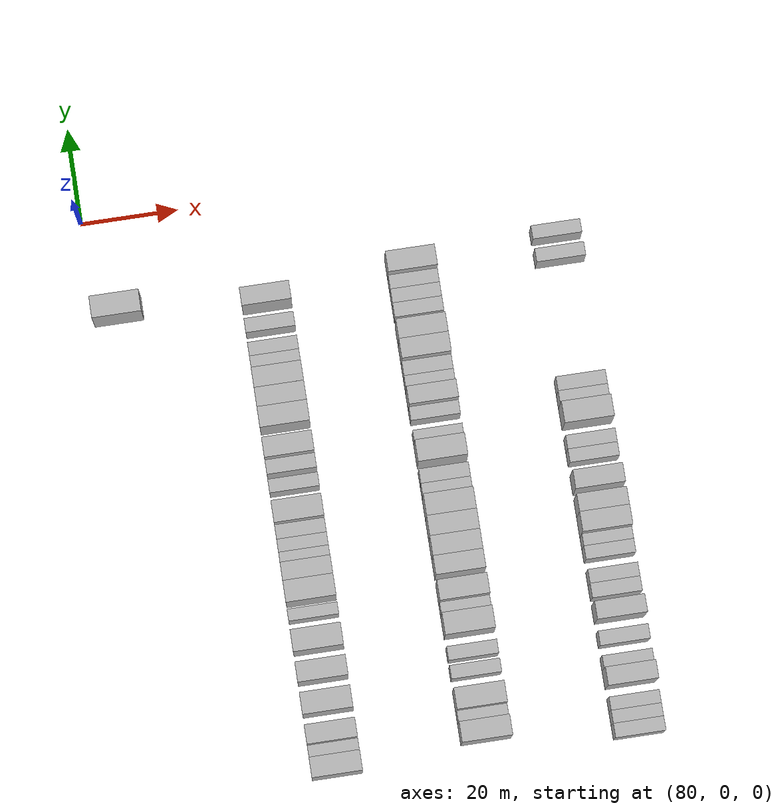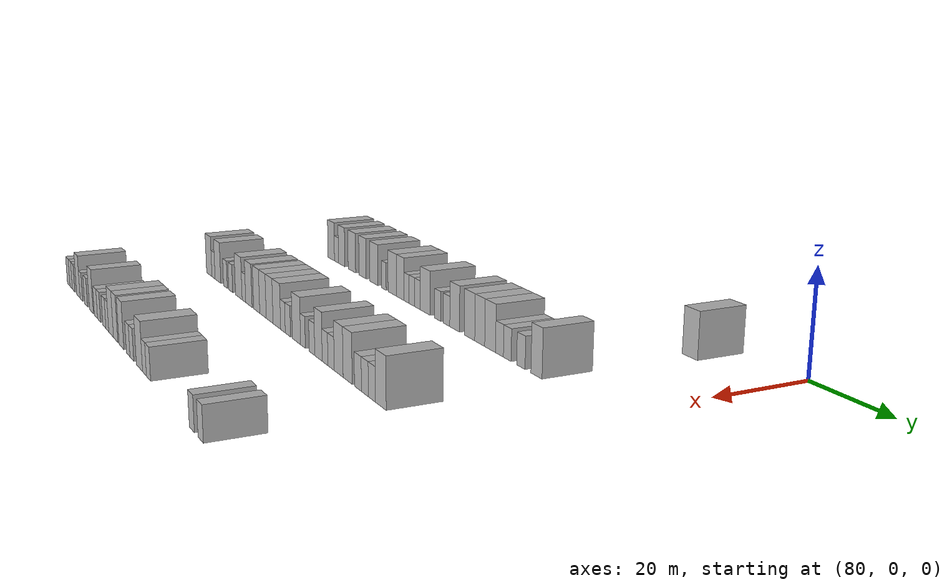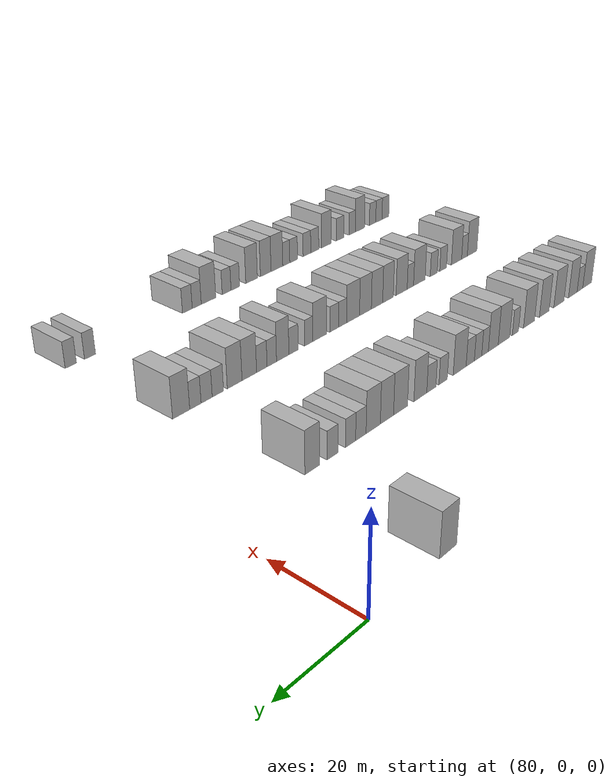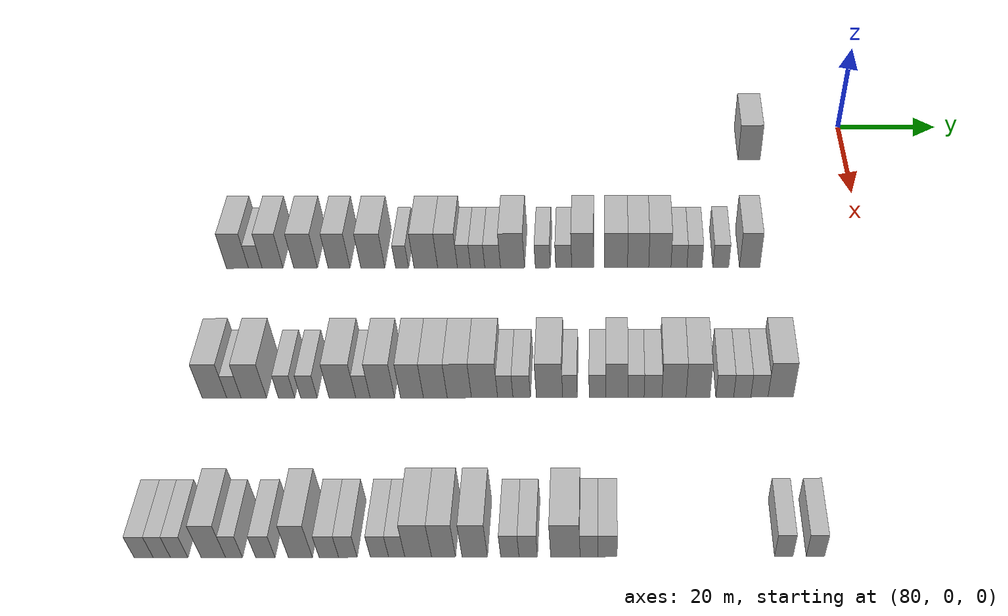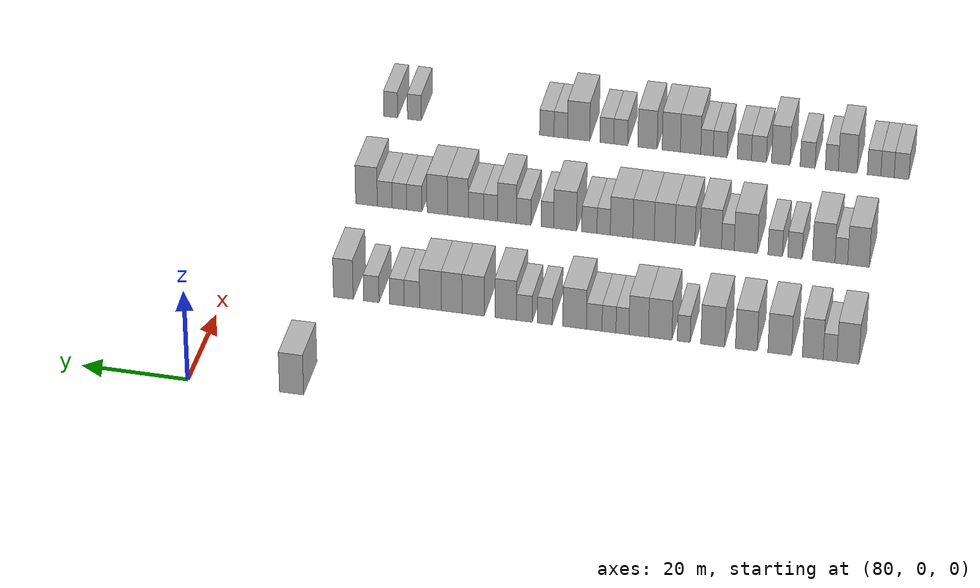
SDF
<sdf version="1.6">
 <world name="default">
  <model name="building_572">
   <static>1</static>
   <pose>85.0000 -19.4271 0 0.000000 0.000000 0.000000</pose>
   <link name="link">
    <pose>0 0 4.50 0 0 0</pose>
    <collision name="collision"><geometry><box><size>10.0000 4.4947 9.0000</size></box></geometry></collision>
    <visual name="visual">
     <cast_shadows>0</cast_shadows>
     <geometry><box><size>10.0000 4.4947 9.0000</size></box></geometry>
     <material>
      <script>
       <uri>model://HANNAS_wall/materials/scripts</uri>
       <uri>model://HANNAS_wall/materials/textures</uri>
       <name>vrc/HANNAS_wall</name>
      </script>
     </material>
    </visual>
   </link>
  </model>
  <model name="building_773">
   <static>1</static>
   <pose>115.0000 -116.7209 0 0.000000 0.000000 0.000000</pose>
   <link name="link">
    <pose>0 0 4.50 0 0 0</pose>
    <collision name="collision"><geometry><box><size>10.0000 4.0631 9.0000</size></box></geometry></collision>
    <visual name="visual">
     <cast_shadows>0</cast_shadows>
     <geometry><box><size>10.0000 4.0631 9.0000</size></box></geometry>
     <material>
      <script>
       <uri>model://HANNAS_wall/materials/scripts</uri>
       <uri>model://HANNAS_wall/materials/textures</uri>
       <name>vrc/HANNAS_wall</name>
      </script>
     </material>
    </visual>
   </link>
  </model>
  <model name="building_774">
   <static>1</static>
   <pose>115.0000 -113.4201 0 0.000000 0.000000 0.000000</pose>
   <link name="link">
    <pose>0 0 3.00 0 0 0</pose>
    <collision name="collision"><geometry><box><size>10.0000 2.5385 6.0000</size></box></geometry></collision>
    <visual name="visual">
     <cast_shadows>0</cast_shadows>
     <geometry><box><size>10.0000 2.5385 6.0000</size></box></geometry>
     <material>
      <script>
       <uri>model://HANNAS_wall/materials/scripts</uri>
       <uri>model://HANNAS_wall/materials/textures</uri>
       <name>vrc/HANNAS_wall</name>
      </script>
     </material>
    </visual>
   </link>
  </model>
  <model name="building_775">
   <static>1</static>
   <pose>115.0000 -110.2233 0 0.000000 0.000000 0.000000</pose>
   <link name="link">
    <pose>0 0 4.50 0 0 0</pose>
    <collision name="collision"><geometry><box><size>10.0000 3.8550 9.0000</size></box></geometry></collision>
    <visual name="visual">
     <cast_shadows>0</cast_shadows>
     <geometry><box><size>10.0000 3.8550 9.0000</size></box></geometry>
     <material>
      <script>
       <uri>model://HANNAS_wall/materials/scripts</uri>
       <uri>model://HANNAS_wall/materials/textures</uri>
       <name>vrc/HANNAS_wall</name>
      </script>
     </material>
    </visual>
   </link>
  </model>
  <model name="building_776">
   <static>1</static>
   <pose>115.0000 -104.1035 0 0.000000 0.000000 0.000000</pose>
   <link name="link">
    <pose>0 0 4.50 0 0 0</pose>
    <collision name="collision"><geometry><box><size>10.0000 4.3846 9.0000</size></box></geometry></collision>
    <visual name="visual">
     <cast_shadows>0</cast_shadows>
     <geometry><box><size>10.0000 4.3846 9.0000</size></box></geometry>
     <material>
      <script>
       <uri>model://HANNAS_wall/materials/scripts</uri>
       <uri>model://HANNAS_wall/materials/textures</uri>
       <name>vrc/HANNAS_wall</name>
      </script>
     </material>
    </visual>
   </link>
  </model>
  <model name="building_777">
   <static>1</static>
   <pose>115.0000 -97.8915 0 0.000000 0.000000 0.000000</pose>
   <link name="link">
    <pose>0 0 4.50 0 0 0</pose>
    <collision name="collision"><geometry><box><size>10.0000 4.0394 9.0000</size></box></geometry></collision>
    <visual name="visual">
     <cast_shadows>0</cast_shadows>
     <geometry><box><size>10.0000 4.0394 9.0000</size></box></geometry>
     <material>
      <script>
       <uri>model://HANNAS_wall/materials/scripts</uri>
       <uri>model://HANNAS_wall/materials/textures</uri>
       <name>vrc/HANNAS_wall</name>
      </script>
     </material>
    </visual>
   </link>
  </model>
  <model name="building_778">
   <static>1</static>
   <pose>115.0000 -91.6483 0 0.000000 0.000000 0.000000</pose>
   <link name="link">
    <pose>0 0 4.50 0 0 0</pose>
    <collision name="collision"><geometry><box><size>10.0000 4.4471 9.0000</size></box></geometry></collision>
    <visual name="visual">
     <cast_shadows>0</cast_shadows>
     <geometry><box><size>10.0000 4.4471 9.0000</size></box></geometry>
     <material>
      <script>
       <uri>model://HANNAS_wall/materials/scripts</uri>
       <uri>model://HANNAS_wall/materials/textures</uri>
       <name>vrc/HANNAS_wall</name>
      </script>
     </material>
    </visual>
   </link>
  </model>
  <model name="building_779">
   <static>1</static>
   <pose>115.0000 -86.2209 0 0.000000 0.000000 0.000000</pose>
   <link name="link">
    <pose>0 0 3.00 0 0 0</pose>
    <collision name="collision"><geometry><box><size>10.0000 2.4076 6.0000</size></box></geometry></collision>
    <visual name="visual">
     <cast_shadows>0</cast_shadows>
     <geometry><box><size>10.0000 2.4076 6.0000</size></box></geometry>
     <material>
      <script>
       <uri>model://HANNAS_wall/materials/scripts</uri>
       <uri>model://HANNAS_wall/materials/textures</uri>
       <name>vrc/HANNAS_wall</name>
      </script>
     </material>
    </visual>
   </link>
  </model>
  <model name="building_780">
   <static>1</static>
   <pose>115.0000 -81.8246 0 0.000000 0.000000 0.000000</pose>
   <link name="link">
    <pose>0 0 4.50 0 0 0</pose>
    <collision name="collision"><geometry><box><size>10.0000 4.3850 9.0000</size></box></geometry></collision>
    <visual name="visual">
     <cast_shadows>0</cast_shadows>
     <geometry><box><size>10.0000 4.3850 9.0000</size></box></geometry>
     <material>
      <script>
       <uri>model://HANNAS_wall/materials/scripts</uri>
       <uri>model://HANNAS_wall/materials/textures</uri>
       <name>vrc/HANNAS_wall</name>
      </script>
     </material>
    </visual>
   </link>
  </model>
  <model name="building_781">
   <static>1</static>
   <pose>115.0000 -77.7991 0 0.000000 0.000000 0.000000</pose>
   <link name="link">
    <pose>0 0 4.50 0 0 0</pose>
    <collision name="collision"><geometry><box><size>10.0000 3.6659 9.0000</size></box></geometry></collision>
    <visual name="visual">
     <cast_shadows>0</cast_shadows>
     <geometry><box><size>10.0000 3.6659 9.0000</size></box></geometry>
     <material>
      <script>
       <uri>model://HANNAS_wall/materials/scripts</uri>
       <uri>model://HANNAS_wall/materials/textures</uri>
       <name>vrc/HANNAS_wall</name>
      </script>
     </material>
    </visual>
   </link>
  </model>
  <model name="building_782">
   <static>1</static>
   <pose>115.0000 -74.7531 0 0.000000 0.000000 0.000000</pose>
   <link name="link">
    <pose>0 0 3.00 0 0 0</pose>
    <collision name="collision"><geometry><box><size>10.0000 2.4262 6.0000</size></box></geometry></collision>
    <visual name="visual">
     <cast_shadows>0</cast_shadows>
     <geometry><box><size>10.0000 2.4262 6.0000</size></box></geometry>
     <material>
      <script>
       <uri>model://HANNAS_wall/materials/scripts</uri>
       <uri>model://HANNAS_wall/materials/textures</uri>
       <name>vrc/HANNAS_wall</name>
      </script>
     </material>
    </visual>
   </link>
  </model>
  <model name="building_783">
   <static>1</static>
   <pose>115.0000 -72.2245 0 0.000000 0.000000 0.000000</pose>
   <link name="link">
    <pose>0 0 3.00 0 0 0</pose>
    <collision name="collision"><geometry><box><size>10.0000 2.6310 6.0000</size></box></geometry></collision>
    <visual name="visual">
     <cast_shadows>0</cast_shadows>
     <geometry><box><size>10.0000 2.6310 6.0000</size></box></geometry>
     <material>
      <script>
       <uri>model://HANNAS_wall/materials/scripts</uri>
       <uri>model://HANNAS_wall/materials/textures</uri>
       <name>vrc/HANNAS_wall</name>
      </script>
     </material>
    </visual>
   </link>
  </model>
  <model name="building_784">
   <static>1</static>
   <pose>115.0000 -69.4503 0 0.000000 0.000000 0.000000</pose>
   <link name="link">
    <pose>0 0 3.00 0 0 0</pose>
    <collision name="collision"><geometry><box><size>10.0000 2.9175 6.0000</size></box></geometry></collision>
    <visual name="visual">
     <cast_shadows>0</cast_shadows>
     <geometry><box><size>10.0000 2.9175 6.0000</size></box></geometry>
     <material>
      <script>
       <uri>model://HANNAS_wall/materials/scripts</uri>
       <uri>model://HANNAS_wall/materials/textures</uri>
       <name>vrc/HANNAS_wall</name>
      </script>
     </material>
    </visual>
   </link>
  </model>
  <model name="building_785">
   <static>1</static>
   <pose>115.0000 -65.7607 0 0.000000 0.000000 0.000000</pose>
   <link name="link">
    <pose>0 0 4.50 0 0 0</pose>
    <collision name="collision"><geometry><box><size>10.0000 4.4617 9.0000</size></box></geometry></collision>
    <visual name="visual">
     <cast_shadows>0</cast_shadows>
     <geometry><box><size>10.0000 4.4617 9.0000</size></box></geometry>
     <material>
      <script>
       <uri>model://HANNAS_wall/materials/scripts</uri>
       <uri>model://HANNAS_wall/materials/textures</uri>
       <name>vrc/HANNAS_wall</name>
      </script>
     </material>
    </visual>
   </link>
  </model>
  <model name="building_786">
   <static>1</static>
   <pose>115.0000 -60.1400 0 0.000000 0.000000 0.000000</pose>
   <link name="link">
    <pose>0 0 3.00 0 0 0</pose>
    <collision name="collision"><geometry><box><size>10.0000 2.7796 6.0000</size></box></geometry></collision>
    <visual name="visual">
     <cast_shadows>0</cast_shadows>
     <geometry><box><size>10.0000 2.7796 6.0000</size></box></geometry>
     <material>
      <script>
       <uri>model://HANNAS_wall/materials/scripts</uri>
       <uri>model://HANNAS_wall/materials/textures</uri>
       <name>vrc/HANNAS_wall</name>
      </script>
     </material>
    </visual>
   </link>
  </model>
  <model name="building_787">
   <static>1</static>
   <pose>115.0000 -56.2725 0 0.000000 0.000000 0.000000</pose>
   <link name="link">
    <pose>0 0 3.00 0 0 0</pose>
    <collision name="collision"><geometry><box><size>10.0000 2.9555 6.0000</size></box></geometry></collision>
    <visual name="visual">
     <cast_shadows>0</cast_shadows>
     <geometry><box><size>10.0000 2.9555 6.0000</size></box></geometry>
     <material>
      <script>
       <uri>model://HANNAS_wall/materials/scripts</uri>
       <uri>model://HANNAS_wall/materials/textures</uri>
       <name>vrc/HANNAS_wall</name>
      </script>
     </material>
    </visual>
   </link>
  </model>
  <model name="building_788">
   <static>1</static>
   <pose>115.0000 -52.7393 0 0.000000 0.000000 0.000000</pose>
   <link name="link">
    <pose>0 0 4.50 0 0 0</pose>
    <collision name="collision"><geometry><box><size>10.0000 4.1108 9.0000</size></box></geometry></collision>
    <visual name="visual">
     <cast_shadows>0</cast_shadows>
     <geometry><box><size>10.0000 4.1108 9.0000</size></box></geometry>
     <material>
      <script>
       <uri>model://HANNAS_wall/materials/scripts</uri>
       <uri>model://HANNAS_wall/materials/textures</uri>
       <name>vrc/HANNAS_wall</name>
      </script>
     </material>
    </visual>
   </link>
  </model>
  <model name="building_789">
   <static>1</static>
   <pose>115.0000 -46.5636 0 0.000000 0.000000 0.000000</pose>
   <link name="link">
    <pose>0 0 4.50 0 0 0</pose>
    <collision name="collision"><geometry><box><size>10.0000 4.2407 9.0000</size></box></geometry></collision>
    <visual name="visual">
     <cast_shadows>0</cast_shadows>
     <geometry><box><size>10.0000 4.2407 9.0000</size></box></geometry>
     <material>
      <script>
       <uri>model://HANNAS_wall/materials/scripts</uri>
       <uri>model://HANNAS_wall/materials/textures</uri>
       <name>vrc/HANNAS_wall</name>
      </script>
     </material>
    </visual>
   </link>
  </model>
  <model name="building_790">
   <static>1</static>
   <pose>115.0000 -42.4787 0 0.000000 0.000000 0.000000</pose>
   <link name="link">
    <pose>0 0 4.50 0 0 0</pose>
    <collision name="collision"><geometry><box><size>10.0000 3.9291 9.0000</size></box></geometry></collision>
    <visual name="visual">
     <cast_shadows>0</cast_shadows>
     <geometry><box><size>10.0000 3.9291 9.0000</size></box></geometry>
     <material>
      <script>
       <uri>model://HANNAS_wall/materials/scripts</uri>
       <uri>model://HANNAS_wall/materials/textures</uri>
       <name>vrc/HANNAS_wall</name>
      </script>
     </material>
    </visual>
   </link>
  </model>
  <model name="building_791">
   <static>1</static>
   <pose>115.0000 -38.4494 0 0.000000 0.000000 0.000000</pose>
   <link name="link">
    <pose>0 0 4.50 0 0 0</pose>
    <collision name="collision"><geometry><box><size>10.0000 4.1294 9.0000</size></box></geometry></collision>
    <visual name="visual">
     <cast_shadows>0</cast_shadows>
     <geometry><box><size>10.0000 4.1294 9.0000</size></box></geometry>
     <material>
      <script>
       <uri>model://HANNAS_wall/materials/scripts</uri>
       <uri>model://HANNAS_wall/materials/textures</uri>
       <name>vrc/HANNAS_wall</name>
      </script>
     </material>
    </visual>
   </link>
  </model>
  <model name="building_792">
   <static>1</static>
   <pose>115.0000 -34.9078 0 0.000000 0.000000 0.000000</pose>
   <link name="link">
    <pose>0 0 3.00 0 0 0</pose>
    <collision name="collision"><geometry><box><size>10.0000 2.9537 6.0000</size></box></geometry></collision>
    <visual name="visual">
     <cast_shadows>0</cast_shadows>
     <geometry><box><size>10.0000 2.9537 6.0000</size></box></geometry>
     <material>
      <script>
       <uri>model://HANNAS_wall/materials/scripts</uri>
       <uri>model://HANNAS_wall/materials/textures</uri>
       <name>vrc/HANNAS_wall</name>
      </script>
     </material>
    </visual>
   </link>
  </model>
  <model name="building_793">
   <static>1</static>
   <pose>115.0000 -32.0259 0 0.000000 0.000000 0.000000</pose>
   <link name="link">
    <pose>0 0 3.00 0 0 0</pose>
    <collision name="collision"><geometry><box><size>10.0000 2.8101 6.0000</size></box></geometry></collision>
    <visual name="visual">
     <cast_shadows>0</cast_shadows>
     <geometry><box><size>10.0000 2.8101 6.0000</size></box></geometry>
     <material>
      <script>
       <uri>model://HANNAS_wall/materials/scripts</uri>
       <uri>model://HANNAS_wall/materials/textures</uri>
       <name>vrc/HANNAS_wall</name>
      </script>
     </material>
    </visual>
   </link>
  </model>
  <model name="building_794">
   <static>1</static>
   <pose>115.0000 -27.1484 0 0.000000 0.000000 0.000000</pose>
   <link name="link">
    <pose>0 0 3.00 0 0 0</pose>
    <collision name="collision"><geometry><box><size>10.0000 2.9449 6.0000</size></box></geometry></collision>
    <visual name="visual">
     <cast_shadows>0</cast_shadows>
     <geometry><box><size>10.0000 2.9449 6.0000</size></box></geometry>
     <material>
      <script>
       <uri>model://HANNAS_wall/materials/scripts</uri>
       <uri>model://HANNAS_wall/materials/textures</uri>
       <name>vrc/HANNAS_wall</name>
      </script>
     </material>
    </visual>
   </link>
  </model>
  <model name="building_795">
   <static>1</static>
   <pose>115.0000 -21.7924 0 0.000000 0.000000 0.000000</pose>
   <link name="link">
    <pose>0 0 4.50 0 0 0</pose>
    <collision name="collision"><geometry><box><size>10.0000 3.7671 9.0000</size></box></geometry></collision>
    <visual name="visual">
     <cast_shadows>0</cast_shadows>
     <geometry><box><size>10.0000 3.7671 9.0000</size></box></geometry>
     <material>
      <script>
       <uri>model://HANNAS_wall/materials/scripts</uri>
       <uri>model://HANNAS_wall/materials/textures</uri>
       <name>vrc/HANNAS_wall</name>
      </script>
     </material>
    </visual>
   </link>
  </model>
  <model name="building_996">
   <static>1</static>
   <pose>145.0000 -114.2841 0 0.000000 0.000000 0.000000</pose>
   <link name="link">
    <pose>0 0 4.50 0 0 0</pose>
    <collision name="collision"><geometry><box><size>10.0000 4.1103 9.0000</size></box></geometry></collision>
    <visual name="visual">
     <cast_shadows>0</cast_shadows>
     <geometry><box><size>10.0000 4.1103 9.0000</size></box></geometry>
     <material>
      <script>
       <uri>model://HANNAS_wall/materials/scripts</uri>
       <uri>model://HANNAS_wall/materials/textures</uri>
       <name>vrc/HANNAS_wall</name>
      </script>
     </material>
    </visual>
   </link>
  </model>
  <model name="building_997">
   <static>1</static>
   <pose>145.0000 -111.0230 0 0.000000 0.000000 0.000000</pose>
   <link name="link">
    <pose>0 0 3.00 0 0 0</pose>
    <collision name="collision"><geometry><box><size>10.0000 2.4119 6.0000</size></box></geometry></collision>
    <visual name="visual">
     <cast_shadows>0</cast_shadows>
     <geometry><box><size>10.0000 2.4119 6.0000</size></box></geometry>
     <material>
      <script>
       <uri>model://HANNAS_wall/materials/scripts</uri>
       <uri>model://HANNAS_wall/materials/textures</uri>
       <name>vrc/HANNAS_wall</name>
      </script>
     </material>
    </visual>
   </link>
  </model>
  <model name="building_998">
   <static>1</static>
   <pose>145.0000 -107.6802 0 0.000000 0.000000 0.000000</pose>
   <link name="link">
    <pose>0 0 4.50 0 0 0</pose>
    <collision name="collision"><geometry><box><size>10.0000 4.2737 9.0000</size></box></geometry></collision>
    <visual name="visual">
     <cast_shadows>0</cast_shadows>
     <geometry><box><size>10.0000 4.2737 9.0000</size></box></geometry>
     <material>
      <script>
       <uri>model://HANNAS_wall/materials/scripts</uri>
       <uri>model://HANNAS_wall/materials/textures</uri>
       <name>vrc/HANNAS_wall</name>
      </script>
     </material>
    </visual>
   </link>
  </model>
  <model name="building_999">
   <static>1</static>
   <pose>145.0000 -102.1789 0 0.000000 0.000000 0.000000</pose>
   <link name="link">
    <pose>0 0 3.00 0 0 0</pose>
    <collision name="collision"><geometry><box><size>10.0000 2.7288 6.0000</size></box></geometry></collision>
    <visual name="visual">
     <cast_shadows>0</cast_shadows>
     <geometry><box><size>10.0000 2.7288 6.0000</size></box></geometry>
     <material>
      <script>
       <uri>model://HANNAS_wall/materials/scripts</uri>
       <uri>model://HANNAS_wall/materials/textures</uri>
       <name>vrc/HANNAS_wall</name>
      </script>
     </material>
    </visual>
   </link>
  </model>
  <model name="building_1000">
   <static>1</static>
   <pose>145.0000 -98.4271 0 0.000000 0.000000 0.000000</pose>
   <link name="link">
    <pose>0 0 3.00 0 0 0</pose>
    <collision name="collision"><geometry><box><size>10.0000 2.7747 6.0000</size></box></geometry></collision>
    <visual name="visual">
     <cast_shadows>0</cast_shadows>
     <geometry><box><size>10.0000 2.7747 6.0000</size></box></geometry>
     <material>
      <script>
       <uri>model://HANNAS_wall/materials/scripts</uri>
       <uri>model://HANNAS_wall/materials/textures</uri>
       <name>vrc/HANNAS_wall</name>
      </script>
     </material>
    </visual>
   </link>
  </model>
  <model name="building_1001">
   <static>1</static>
   <pose>145.0000 -92.8062 0 0.000000 0.000000 0.000000</pose>
   <link name="link">
    <pose>0 0 4.50 0 0 0</pose>
    <collision name="collision"><geometry><box><size>10.0000 4.4672 9.0000</size></box></geometry></collision>
    <visual name="visual">
     <cast_shadows>0</cast_shadows>
     <geometry><box><size>10.0000 4.4672 9.0000</size></box></geometry>
     <material>
      <script>
       <uri>model://HANNAS_wall/materials/scripts</uri>
       <uri>model://HANNAS_wall/materials/textures</uri>
       <name>vrc/HANNAS_wall</name>
      </script>
     </material>
    </visual>
   </link>
  </model>
  <model name="building_1002">
   <static>1</static>
   <pose>145.0000 -89.3611 0 0.000000 0.000000 0.000000</pose>
   <link name="link">
    <pose>0 0 3.00 0 0 0</pose>
    <collision name="collision"><geometry><box><size>10.0000 2.4230 6.0000</size></box></geometry></collision>
    <visual name="visual">
     <cast_shadows>0</cast_shadows>
     <geometry><box><size>10.0000 2.4230 6.0000</size></box></geometry>
     <material>
      <script>
       <uri>model://HANNAS_wall/materials/scripts</uri>
       <uri>model://HANNAS_wall/materials/textures</uri>
       <name>vrc/HANNAS_wall</name>
      </script>
     </material>
    </visual>
   </link>
  </model>
  <model name="building_1003">
   <static>1</static>
   <pose>145.0000 -86.0869 0 0.000000 0.000000 0.000000</pose>
   <link name="link">
    <pose>0 0 4.50 0 0 0</pose>
    <collision name="collision"><geometry><box><size>10.0000 4.1253 9.0000</size></box></geometry></collision>
    <visual name="visual">
     <cast_shadows>0</cast_shadows>
     <geometry><box><size>10.0000 4.1253 9.0000</size></box></geometry>
     <material>
      <script>
       <uri>model://HANNAS_wall/materials/scripts</uri>
       <uri>model://HANNAS_wall/materials/textures</uri>
       <name>vrc/HANNAS_wall</name>
      </script>
     </material>
    </visual>
   </link>
  </model>
  <model name="building_1004">
   <static>1</static>
   <pose>145.0000 -81.1056 0 0.000000 0.000000 0.000000</pose>
   <link name="link">
    <pose>0 0 4.50 0 0 0</pose>
    <collision name="collision"><geometry><box><size>10.0000 3.8373 9.0000</size></box></geometry></collision>
    <visual name="visual">
     <cast_shadows>0</cast_shadows>
     <geometry><box><size>10.0000 3.8373 9.0000</size></box></geometry>
     <material>
      <script>
       <uri>model://HANNAS_wall/materials/scripts</uri>
       <uri>model://HANNAS_wall/materials/textures</uri>
       <name>vrc/HANNAS_wall</name>
      </script>
     </material>
    </visual>
   </link>
  </model>
  <model name="building_1005">
   <static>1</static>
   <pose>145.0000 -77.1849 0 0.000000 0.000000 0.000000</pose>
   <link name="link">
    <pose>0 0 4.50 0 0 0</pose>
    <collision name="collision"><geometry><box><size>10.0000 4.0041 9.0000</size></box></geometry></collision>
    <visual name="visual">
     <cast_shadows>0</cast_shadows>
     <geometry><box><size>10.0000 4.0041 9.0000</size></box></geometry>
     <material>
      <script>
       <uri>model://HANNAS_wall/materials/scripts</uri>
       <uri>model://HANNAS_wall/materials/textures</uri>
       <name>vrc/HANNAS_wall</name>
      </script>
     </material>
    </visual>
   </link>
  </model>
  <model name="building_1006">
   <static>1</static>
   <pose>145.0000 -73.1439 0 0.000000 0.000000 0.000000</pose>
   <link name="link">
    <pose>0 0 4.50 0 0 0</pose>
    <collision name="collision"><geometry><box><size>10.0000 4.0779 9.0000</size></box></geometry></collision>
    <visual name="visual">
     <cast_shadows>0</cast_shadows>
     <geometry><box><size>10.0000 4.0779 9.0000</size></box></geometry>
     <material>
      <script>
       <uri>model://HANNAS_wall/materials/scripts</uri>
       <uri>model://HANNAS_wall/materials/textures</uri>
       <name>vrc/HANNAS_wall</name>
      </script>
     </material>
    </visual>
   </link>
  </model>
  <model name="building_1007">
   <static>1</static>
   <pose>145.0000 -68.9057 0 0.000000 0.000000 0.000000</pose>
   <link name="link">
    <pose>0 0 4.50 0 0 0</pose>
    <collision name="collision"><geometry><box><size>10.0000 4.3985 9.0000</size></box></geometry></collision>
    <visual name="visual">
     <cast_shadows>0</cast_shadows>
     <geometry><box><size>10.0000 4.3985 9.0000</size></box></geometry>
     <material>
      <script>
       <uri>model://HANNAS_wall/materials/scripts</uri>
       <uri>model://HANNAS_wall/materials/textures</uri>
       <name>vrc/HANNAS_wall</name>
      </script>
     </material>
    </visual>
   </link>
  </model>
  <model name="building_1008">
   <static>1</static>
   <pose>145.0000 -65.4141 0 0.000000 0.000000 0.000000</pose>
   <link name="link">
    <pose>0 0 3.00 0 0 0</pose>
    <collision name="collision"><geometry><box><size>10.0000 2.5848 6.0000</size></box></geometry></collision>
    <visual name="visual">
     <cast_shadows>0</cast_shadows>
     <geometry><box><size>10.0000 2.5848 6.0000</size></box></geometry>
     <material>
      <script>
       <uri>model://HANNAS_wall/materials/scripts</uri>
       <uri>model://HANNAS_wall/materials/textures</uri>
       <name>vrc/HANNAS_wall</name>
      </script>
     </material>
    </visual>
   </link>
  </model>
  <model name="building_1009">
   <static>1</static>
   <pose>145.0000 -62.6502 0 0.000000 0.000000 0.000000</pose>
   <link name="link">
    <pose>0 0 3.00 0 0 0</pose>
    <collision name="collision"><geometry><box><size>10.0000 2.9429 6.0000</size></box></geometry></collision>
    <visual name="visual">
     <cast_shadows>0</cast_shadows>
     <geometry><box><size>10.0000 2.9429 6.0000</size></box></geometry>
     <material>
      <script>
       <uri>model://HANNAS_wall/materials/scripts</uri>
       <uri>model://HANNAS_wall/materials/textures</uri>
       <name>vrc/HANNAS_wall</name>
      </script>
     </material>
    </visual>
   </link>
  </model>
  <model name="building_1010">
   <static>1</static>
   <pose>145.0000 -57.9661 0 0.000000 0.000000 0.000000</pose>
   <link name="link">
    <pose>0 0 4.50 0 0 0</pose>
    <collision name="collision"><geometry><box><size>10.0000 4.4253 9.0000</size></box></geometry></collision>
    <visual name="visual">
     <cast_shadows>0</cast_shadows>
     <geometry><box><size>10.0000 4.4253 9.0000</size></box></geometry>
     <material>
      <script>
       <uri>model://HANNAS_wall/materials/scripts</uri>
       <uri>model://HANNAS_wall/materials/textures</uri>
       <name>vrc/HANNAS_wall</name>
      </script>
     </material>
    </visual>
   </link>
  </model>
  <model name="building_1011">
   <static>1</static>
   <pose>145.0000 -54.5207 0 0.000000 0.000000 0.000000</pose>
   <link name="link">
    <pose>0 0 3.00 0 0 0</pose>
    <collision name="collision"><geometry><box><size>10.0000 2.4656 6.0000</size></box></geometry></collision>
    <visual name="visual">
     <cast_shadows>0</cast_shadows>
     <geometry><box><size>10.0000 2.4656 6.0000</size></box></geometry>
     <material>
      <script>
       <uri>model://HANNAS_wall/materials/scripts</uri>
       <uri>model://HANNAS_wall/materials/textures</uri>
       <name>vrc/HANNAS_wall</name>
      </script>
     </material>
    </visual>
   </link>
  </model>
  <model name="building_1012">
   <static>1</static>
   <pose>145.0000 -49.8854 0 0.000000 0.000000 0.000000</pose>
   <link name="link">
    <pose>0 0 3.00 0 0 0</pose>
    <collision name="collision"><geometry><box><size>10.0000 2.8051 6.0000</size></box></geometry></collision>
    <visual name="visual">
     <cast_shadows>0</cast_shadows>
     <geometry><box><size>10.0000 2.8051 6.0000</size></box></geometry>
     <material>
      <script>
       <uri>model://HANNAS_wall/materials/scripts</uri>
       <uri>model://HANNAS_wall/materials/textures</uri>
       <name>vrc/HANNAS_wall</name>
      </script>
     </material>
    </visual>
   </link>
  </model>
  <model name="building_1013">
   <static>1</static>
   <pose>145.0000 -46.6437 0 0.000000 0.000000 0.000000</pose>
   <link name="link">
    <pose>0 0 4.50 0 0 0</pose>
    <collision name="collision"><geometry><box><size>10.0000 3.6782 9.0000</size></box></geometry></collision>
    <visual name="visual">
     <cast_shadows>0</cast_shadows>
     <geometry><box><size>10.0000 3.6782 9.0000</size></box></geometry>
     <material>
      <script>
       <uri>model://HANNAS_wall/materials/scripts</uri>
       <uri>model://HANNAS_wall/materials/textures</uri>
       <name>vrc/HANNAS_wall</name>
      </script>
     </material>
    </visual>
   </link>
  </model>
  <model name="building_1014">
   <static>1</static>
   <pose>145.0000 -43.4303 0 0.000000 0.000000 0.000000</pose>
   <link name="link">
    <pose>0 0 3.00 0 0 0</pose>
    <collision name="collision"><geometry><box><size>10.0000 2.7487 6.0000</size></box></geometry></collision>
    <visual name="visual">
     <cast_shadows>0</cast_shadows>
     <geometry><box><size>10.0000 2.7487 6.0000</size></box></geometry>
     <material>
      <script>
       <uri>model://HANNAS_wall/materials/scripts</uri>
       <uri>model://HANNAS_wall/materials/textures</uri>
       <name>vrc/HANNAS_wall</name>
      </script>
     </material>
    </visual>
   </link>
  </model>
  <model name="building_1015">
   <static>1</static>
   <pose>145.0000 -40.5593 0 0.000000 0.000000 0.000000</pose>
   <link name="link">
    <pose>0 0 3.00 0 0 0</pose>
    <collision name="collision"><geometry><box><size>10.0000 2.9934 6.0000</size></box></geometry></collision>
    <visual name="visual">
     <cast_shadows>0</cast_shadows>
     <geometry><box><size>10.0000 2.9934 6.0000</size></box></geometry>
     <material>
      <script>
       <uri>model://HANNAS_wall/materials/scripts</uri>
       <uri>model://HANNAS_wall/materials/textures</uri>
       <name>vrc/HANNAS_wall</name>
      </script>
     </material>
    </visual>
   </link>
  </model>
  <model name="building_1016">
   <static>1</static>
   <pose>145.0000 -37.0304 0 0.000000 0.000000 0.000000</pose>
   <link name="link">
    <pose>0 0 4.50 0 0 0</pose>
    <collision name="collision"><geometry><box><size>10.0000 4.0644 9.0000</size></box></geometry></collision>
    <visual name="visual">
     <cast_shadows>0</cast_shadows>
     <geometry><box><size>10.0000 4.0644 9.0000</size></box></geometry>
     <material>
      <script>
       <uri>model://HANNAS_wall/materials/scripts</uri>
       <uri>model://HANNAS_wall/materials/textures</uri>
       <name>vrc/HANNAS_wall</name>
      </script>
     </material>
    </visual>
   </link>
  </model>
  <model name="building_1017">
   <static>1</static>
   <pose>145.0000 -32.9887 0 0.000000 0.000000 0.000000</pose>
   <link name="link">
    <pose>0 0 4.50 0 0 0</pose>
    <collision name="collision"><geometry><box><size>10.0000 4.0189 9.0000</size></box></geometry></collision>
    <visual name="visual">
     <cast_shadows>0</cast_shadows>
     <geometry><box><size>10.0000 4.0189 9.0000</size></box></geometry>
     <material>
      <script>
       <uri>model://HANNAS_wall/materials/scripts</uri>
       <uri>model://HANNAS_wall/materials/textures</uri>
       <name>vrc/HANNAS_wall</name>
      </script>
     </material>
    </visual>
   </link>
  </model>
  <model name="building_1018">
   <static>1</static>
   <pose>145.0000 -28.4836 0 0.000000 0.000000 0.000000</pose>
   <link name="link">
    <pose>0 0 3.00 0 0 0</pose>
    <collision name="collision"><geometry><box><size>10.0000 2.9912 6.0000</size></box></geometry></collision>
    <visual name="visual">
     <cast_shadows>0</cast_shadows>
     <geometry><box><size>10.0000 2.9912 6.0000</size></box></geometry>
     <material>
      <script>
       <uri>model://HANNAS_wall/materials/scripts</uri>
       <uri>model://HANNAS_wall/materials/textures</uri>
       <name>vrc/HANNAS_wall</name>
      </script>
     </material>
    </visual>
   </link>
  </model>
  <model name="building_1019">
   <static>1</static>
   <pose>145.0000 -25.5419 0 0.000000 0.000000 0.000000</pose>
   <link name="link">
    <pose>0 0 3.00 0 0 0</pose>
    <collision name="collision"><geometry><box><size>10.0000 2.8924 6.0000</size></box></geometry></collision>
    <visual name="visual">
     <cast_shadows>0</cast_shadows>
     <geometry><box><size>10.0000 2.8924 6.0000</size></box></geometry>
     <material>
      <script>
       <uri>model://HANNAS_wall/materials/scripts</uri>
       <uri>model://HANNAS_wall/materials/textures</uri>
       <name>vrc/HANNAS_wall</name>
      </script>
     </material>
    </visual>
   </link>
  </model>
  <model name="building_1020">
   <static>1</static>
   <pose>145.0000 -22.6485 0 0.000000 0.000000 0.000000</pose>
   <link name="link">
    <pose>0 0 3.00 0 0 0</pose>
    <collision name="collision"><geometry><box><size>10.0000 2.8944 6.0000</size></box></geometry></collision>
    <visual name="visual">
     <cast_shadows>0</cast_shadows>
     <geometry><box><size>10.0000 2.8944 6.0000</size></box></geometry>
     <material>
      <script>
       <uri>model://HANNAS_wall/materials/scripts</uri>
       <uri>model://HANNAS_wall/materials/textures</uri>
       <name>vrc/HANNAS_wall</name>
      </script>
     </material>
    </visual>
   </link>
  </model>
  <model name="building_1021">
   <static>1</static>
   <pose>145.0000 -19.0678 0 0.000000 0.000000 0.000000</pose>
   <link name="link">
    <pose>0 0 4.50 0 0 0</pose>
    <collision name="collision"><geometry><box><size>10.0000 4.2669 9.0000</size></box></geometry></collision>
    <visual name="visual">
     <cast_shadows>0</cast_shadows>
     <geometry><box><size>10.0000 4.2669 9.0000</size></box></geometry>
     <material>
      <script>
       <uri>model://HANNAS_wall/materials/scripts</uri>
       <uri>model://HANNAS_wall/materials/textures</uri>
       <name>vrc/HANNAS_wall</name>
      </script>
     </material>
    </visual>
   </link>
  </model>
  <model name="building_1223">
   <static>1</static>
   <pose>175.0000 -118.3154 0 0.000000 0.000000 0.000000</pose>
   <link name="link">
    <pose>0 0 3.00 0 0 0</pose>
    <collision name="collision"><geometry><box><size>10.0000 2.8753 6.0000</size></box></geometry></collision>
    <visual name="visual">
     <cast_shadows>0</cast_shadows>
     <geometry><box><size>10.0000 2.8753 6.0000</size></box></geometry>
     <material>
      <script>
       <uri>model://HANNAS_wall/materials/scripts</uri>
       <uri>model://HANNAS_wall/materials/textures</uri>
       <name>vrc/HANNAS_wall</name>
      </script>
     </material>
    </visual>
   </link>
  </model>
  <model name="building_1224">
   <static>1</static>
   <pose>175.0000 -115.5799 0 0.000000 0.000000 0.000000</pose>
   <link name="link">
    <pose>0 0 3.00 0 0 0</pose>
    <collision name="collision"><geometry><box><size>10.0000 2.5958 6.0000</size></box></geometry></collision>
    <visual name="visual">
     <cast_shadows>0</cast_shadows>
     <geometry><box><size>10.0000 2.5958 6.0000</size></box></geometry>
     <material>
      <script>
       <uri>model://HANNAS_wall/materials/scripts</uri>
       <uri>model://HANNAS_wall/materials/textures</uri>
       <name>vrc/HANNAS_wall</name>
      </script>
     </material>
    </visual>
   </link>
  </model>
  <model name="building_1225">
   <static>1</static>
   <pose>175.0000 -112.9641 0 0.000000 0.000000 0.000000</pose>
   <link name="link">
    <pose>0 0 3.00 0 0 0</pose>
    <collision name="collision"><geometry><box><size>10.0000 2.6356 6.0000</size></box></geometry></collision>
    <visual name="visual">
     <cast_shadows>0</cast_shadows>
     <geometry><box><size>10.0000 2.6356 6.0000</size></box></geometry>
     <material>
      <script>
       <uri>model://HANNAS_wall/materials/scripts</uri>
       <uri>model://HANNAS_wall/materials/textures</uri>
       <name>vrc/HANNAS_wall</name>
      </script>
     </material>
    </visual>
   </link>
  </model>
  <model name="building_1226">
   <static>1</static>
   <pose>175.0000 -107.8081 0 0.000000 0.000000 0.000000</pose>
   <link name="link">
    <pose>0 0 4.50 0 0 0</pose>
    <collision name="collision"><geometry><box><size>10.0000 3.6765 9.0000</size></box></geometry></collision>
    <visual name="visual">
     <cast_shadows>0</cast_shadows>
     <geometry><box><size>10.0000 3.6765 9.0000</size></box></geometry>
     <material>
      <script>
       <uri>model://HANNAS_wall/materials/scripts</uri>
       <uri>model://HANNAS_wall/materials/textures</uri>
       <name>vrc/HANNAS_wall</name>
      </script>
     </material>
    </visual>
   </link>
  </model>
  <model name="building_1227">
   <static>1</static>
   <pose>175.0000 -104.6931 0 0.000000 0.000000 0.000000</pose>
   <link name="link">
    <pose>0 0 3.00 0 0 0</pose>
    <collision name="collision"><geometry><box><size>10.0000 2.5536 6.0000</size></box></geometry></collision>
    <visual name="visual">
     <cast_shadows>0</cast_shadows>
     <geometry><box><size>10.0000 2.5536 6.0000</size></box></geometry>
     <material>
      <script>
       <uri>model://HANNAS_wall/materials/scripts</uri>
       <uri>model://HANNAS_wall/materials/textures</uri>
       <name>vrc/HANNAS_wall</name>
      </script>
     </material>
    </visual>
   </link>
  </model>
  <model name="building_1228">
   <static>1</static>
   <pose>175.0000 -99.9534 0 0.000000 0.000000 0.000000</pose>
   <link name="link">
    <pose>0 0 3.00 0 0 0</pose>
    <collision name="collision"><geometry><box><size>10.0000 2.9257 6.0000</size></box></geometry></collision>
    <visual name="visual">
     <cast_shadows>0</cast_shadows>
     <geometry><box><size>10.0000 2.9257 6.0000</size></box></geometry>
     <material>
      <script>
       <uri>model://HANNAS_wall/materials/scripts</uri>
       <uri>model://HANNAS_wall/materials/textures</uri>
       <name>vrc/HANNAS_wall</name>
      </script>
     </material>
    </visual>
   </link>
  </model>
  <model name="building_1229">
   <static>1</static>
   <pose>175.0000 -94.6728 0 0.000000 0.000000 0.000000</pose>
   <link name="link">
    <pose>0 0 4.50 0 0 0</pose>
    <collision name="collision"><geometry><box><size>10.0000 3.6355 9.0000</size></box></geometry></collision>
    <visual name="visual">
     <cast_shadows>0</cast_shadows>
     <geometry><box><size>10.0000 3.6355 9.0000</size></box></geometry>
     <material>
      <script>
       <uri>model://HANNAS_wall/materials/scripts</uri>
       <uri>model://HANNAS_wall/materials/textures</uri>
       <name>vrc/HANNAS_wall</name>
      </script>
     </material>
    </visual>
   </link>
  </model>
  <model name="building_1230">
   <static>1</static>
   <pose>175.0000 -90.3749 0 0.000000 0.000000 0.000000</pose>
   <link name="link">
    <pose>0 0 3.00 0 0 0</pose>
    <collision name="collision"><geometry><box><size>10.0000 2.9603 6.0000</size></box></geometry></collision>
    <visual name="visual">
     <cast_shadows>0</cast_shadows>
     <geometry><box><size>10.0000 2.9603 6.0000</size></box></geometry>
     <material>
      <script>
       <uri>model://HANNAS_wall/materials/scripts</uri>
       <uri>model://HANNAS_wall/materials/textures</uri>
       <name>vrc/HANNAS_wall</name>
      </script>
     </material>
    </visual>
   </link>
  </model>
  <model name="building_1231">
   <static>1</static>
   <pose>175.0000 -87.4980 0 0.000000 0.000000 0.000000</pose>
   <link name="link">
    <pose>0 0 3.00 0 0 0</pose>
    <collision name="collision"><geometry><box><size>10.0000 2.7936 6.0000</size></box></geometry></collision>
    <visual name="visual">
     <cast_shadows>0</cast_shadows>
     <geometry><box><size>10.0000 2.7936 6.0000</size></box></geometry>
     <material>
      <script>
       <uri>model://HANNAS_wall/materials/scripts</uri>
       <uri>model://HANNAS_wall/materials/textures</uri>
       <name>vrc/HANNAS_wall</name>
      </script>
     </material>
    </visual>
   </link>
  </model>
  <model name="building_1232">
   <static>1</static>
   <pose>175.0000 -82.7208 0 0.000000 0.000000 0.000000</pose>
   <link name="link">
    <pose>0 0 3.00 0 0 0</pose>
    <collision name="collision"><geometry><box><size>10.0000 2.7609 6.0000</size></box></geometry></collision>
    <visual name="visual">
     <cast_shadows>0</cast_shadows>
     <geometry><box><size>10.0000 2.7609 6.0000</size></box></geometry>
     <material>
      <script>
       <uri>model://HANNAS_wall/materials/scripts</uri>
       <uri>model://HANNAS_wall/materials/textures</uri>
       <name>vrc/HANNAS_wall</name>
      </script>
     </material>
    </visual>
   </link>
  </model>
  <model name="building_1233">
   <static>1</static>
   <pose>175.0000 -80.1175 0 0.000000 0.000000 0.000000</pose>
   <link name="link">
    <pose>0 0 3.00 0 0 0</pose>
    <collision name="collision"><geometry><box><size>10.0000 2.4457 6.0000</size></box></geometry></collision>
    <visual name="visual">
     <cast_shadows>0</cast_shadows>
     <geometry><box><size>10.0000 2.4457 6.0000</size></box></geometry>
     <material>
      <script>
       <uri>model://HANNAS_wall/materials/scripts</uri>
       <uri>model://HANNAS_wall/materials/textures</uri>
       <name>vrc/HANNAS_wall</name>
      </script>
     </material>
    </visual>
   </link>
  </model>
  <model name="building_1234">
   <static>1</static>
   <pose>175.0000 -76.8742 0 0.000000 0.000000 0.000000</pose>
   <link name="link">
    <pose>0 0 4.50 0 0 0</pose>
    <collision name="collision"><geometry><box><size>10.0000 4.0408 9.0000</size></box></geometry></collision>
    <visual name="visual">
     <cast_shadows>0</cast_shadows>
     <geometry><box><size>10.0000 4.0408 9.0000</size></box></geometry>
     <material>
      <script>
       <uri>model://HANNAS_wall/materials/scripts</uri>
       <uri>model://HANNAS_wall/materials/textures</uri>
       <name>vrc/HANNAS_wall</name>
      </script>
     </material>
    </visual>
   </link>
  </model>
  <model name="building_1235">
   <static>1</static>
   <pose>175.0000 -73.0469 0 0.000000 0.000000 0.000000</pose>
   <link name="link">
    <pose>0 0 4.50 0 0 0</pose>
    <collision name="collision"><geometry><box><size>10.0000 3.6139 9.0000</size></box></geometry></collision>
    <visual name="visual">
     <cast_shadows>0</cast_shadows>
     <geometry><box><size>10.0000 3.6139 9.0000</size></box></geometry>
     <material>
      <script>
       <uri>model://HANNAS_wall/materials/scripts</uri>
       <uri>model://HANNAS_wall/materials/textures</uri>
       <name>vrc/HANNAS_wall</name>
      </script>
     </material>
    </visual>
   </link>
  </model>
  <model name="building_1236">
   <static>1</static>
   <pose>175.0000 -68.3241 0 0.000000 0.000000 0.000000</pose>
   <link name="link">
    <pose>0 0 4.50 0 0 0</pose>
    <collision name="collision"><geometry><box><size>10.0000 3.8317 9.0000</size></box></geometry></collision>
    <visual name="visual">
     <cast_shadows>0</cast_shadows>
     <geometry><box><size>10.0000 3.8317 9.0000</size></box></geometry>
     <material>
      <script>
       <uri>model://HANNAS_wall/materials/scripts</uri>
       <uri>model://HANNAS_wall/materials/textures</uri>
       <name>vrc/HANNAS_wall</name>
      </script>
     </material>
    </visual>
   </link>
  </model>
  <model name="building_1237">
   <static>1</static>
   <pose>175.0000 -63.0291 0 0.000000 0.000000 0.000000</pose>
   <link name="link">
    <pose>0 0 3.00 0 0 0</pose>
    <collision name="collision"><geometry><box><size>10.0000 2.7584 6.0000</size></box></geometry></collision>
    <visual name="visual">
     <cast_shadows>0</cast_shadows>
     <geometry><box><size>10.0000 2.7584 6.0000</size></box></geometry>
     <material>
      <script>
       <uri>model://HANNAS_wall/materials/scripts</uri>
       <uri>model://HANNAS_wall/materials/textures</uri>
       <name>vrc/HANNAS_wall</name>
      </script>
     </material>
    </visual>
   </link>
  </model>
  <model name="building_1238">
   <static>1</static>
   <pose>175.0000 -60.2492 0 0.000000 0.000000 0.000000</pose>
   <link name="link">
    <pose>0 0 3.00 0 0 0</pose>
    <collision name="collision"><geometry><box><size>10.0000 2.8013 6.0000</size></box></geometry></collision>
    <visual name="visual">
     <cast_shadows>0</cast_shadows>
     <geometry><box><size>10.0000 2.8013 6.0000</size></box></geometry>
     <material>
      <script>
       <uri>model://HANNAS_wall/materials/scripts</uri>
       <uri>model://HANNAS_wall/materials/textures</uri>
       <name>vrc/HANNAS_wall</name>
      </script>
     </material>
    </visual>
   </link>
  </model>
  <model name="building_1239">
   <static>1</static>
   <pose>175.0000 -54.6343 0 0.000000 0.000000 0.000000</pose>
   <link name="link">
    <pose>0 0 4.50 0 0 0</pose>
    <collision name="collision"><geometry><box><size>10.0000 4.4287 9.0000</size></box></geometry></collision>
    <visual name="visual">
     <cast_shadows>0</cast_shadows>
     <geometry><box><size>10.0000 4.4287 9.0000</size></box></geometry>
     <material>
      <script>
       <uri>model://HANNAS_wall/materials/scripts</uri>
       <uri>model://HANNAS_wall/materials/textures</uri>
       <name>vrc/HANNAS_wall</name>
      </script>
     </material>
    </visual>
   </link>
  </model>
  <model name="building_1240">
   <static>1</static>
   <pose>175.0000 -51.0633 0 0.000000 0.000000 0.000000</pose>
   <link name="link">
    <pose>0 0 3.00 0 0 0</pose>
    <collision name="collision"><geometry><box><size>10.0000 2.7132 6.0000</size></box></geometry></collision>
    <visual name="visual">
     <cast_shadows>0</cast_shadows>
     <geometry><box><size>10.0000 2.7132 6.0000</size></box></geometry>
     <material>
      <script>
       <uri>model://HANNAS_wall/materials/scripts</uri>
       <uri>model://HANNAS_wall/materials/textures</uri>
       <name>vrc/HANNAS_wall</name>
      </script>
     </material>
    </visual>
   </link>
  </model>
  <model name="building_1241">
   <static>1</static>
   <pose>175.0000 -48.2602 0 0.000000 0.000000 0.000000</pose>
   <link name="link">
    <pose>0 0 3.00 0 0 0</pose>
    <collision name="collision"><geometry><box><size>10.0000 2.8932 6.0000</size></box></geometry></collision>
    <visual name="visual">
     <cast_shadows>0</cast_shadows>
     <geometry><box><size>10.0000 2.8932 6.0000</size></box></geometry>
     <material>
      <script>
       <uri>model://HANNAS_wall/materials/scripts</uri>
       <uri>model://HANNAS_wall/materials/textures</uri>
       <name>vrc/HANNAS_wall</name>
      </script>
     </material>
    </visual>
   </link>
  </model>
  <model name="building_1242">
   <static>1</static>
   <pose>175.0000 -21.6124 0 0.000000 0.000000 0.000000</pose>
   <link name="link">
    <pose>0 0 3.00 0 0 0</pose>
    <collision name="collision"><geometry><box><size>10.0000 2.8008 6.0000</size></box></geometry></collision>
    <visual name="visual">
     <cast_shadows>0</cast_shadows>
     <geometry><box><size>10.0000 2.8008 6.0000</size></box></geometry>
     <material>
      <script>
       <uri>model://HANNAS_wall/materials/scripts</uri>
       <uri>model://HANNAS_wall/materials/textures</uri>
       <name>vrc/HANNAS_wall</name>
      </script>
     </material>
    </visual>
   </link>
  </model>
  <model name="building_1243">
   <static>1</static>
   <pose>175.0000 -16.8171 0 0.000000 0.000000 0.000000</pose>
   <link name="link">
    <pose>0 0 3.00 0 0 0</pose>
    <collision name="collision"><geometry><box><size>10.0000 2.7897 6.0000</size></box></geometry></collision>
    <visual name="visual">
     <cast_shadows>0</cast_shadows>
     <geometry><box><size>10.0000 2.7897 6.0000</size></box></geometry>
     <material>
      <script>
       <uri>model://HANNAS_wall/materials/scripts</uri>
       <uri>model://HANNAS_wall/materials/textures</uri>
       <name>vrc/HANNAS_wall</name>
      </script>
     </material>
    </visual>
   </link>
  </model>
 </world>
</sdf>
